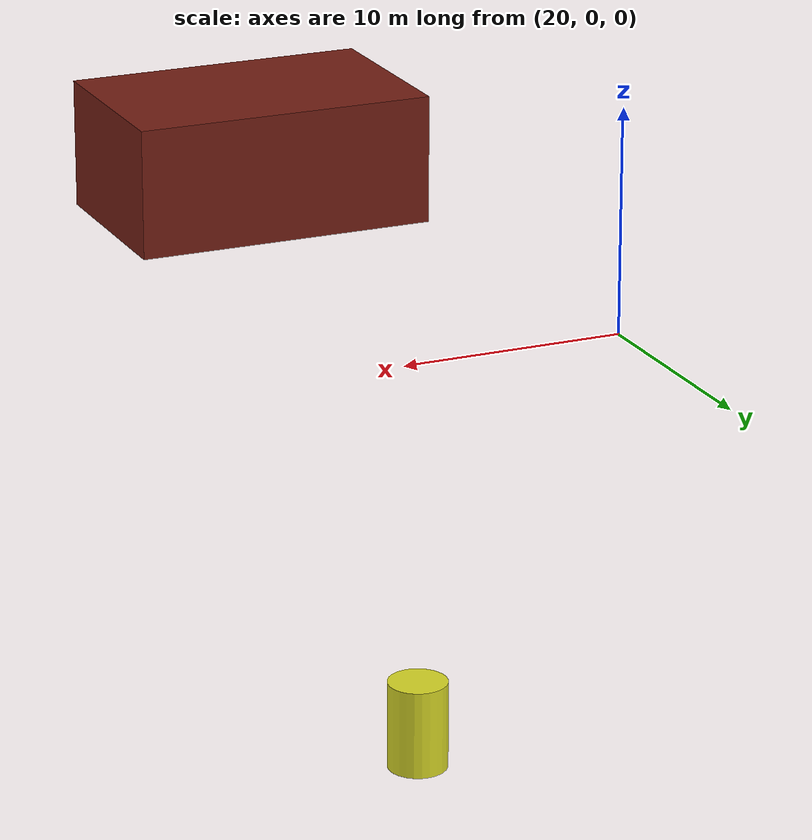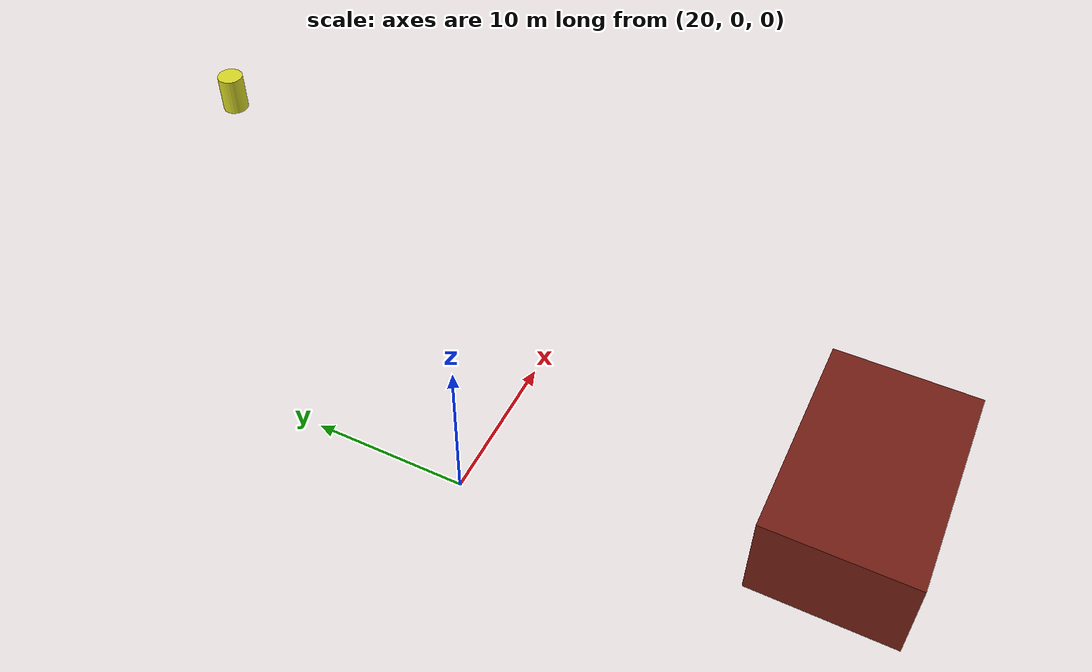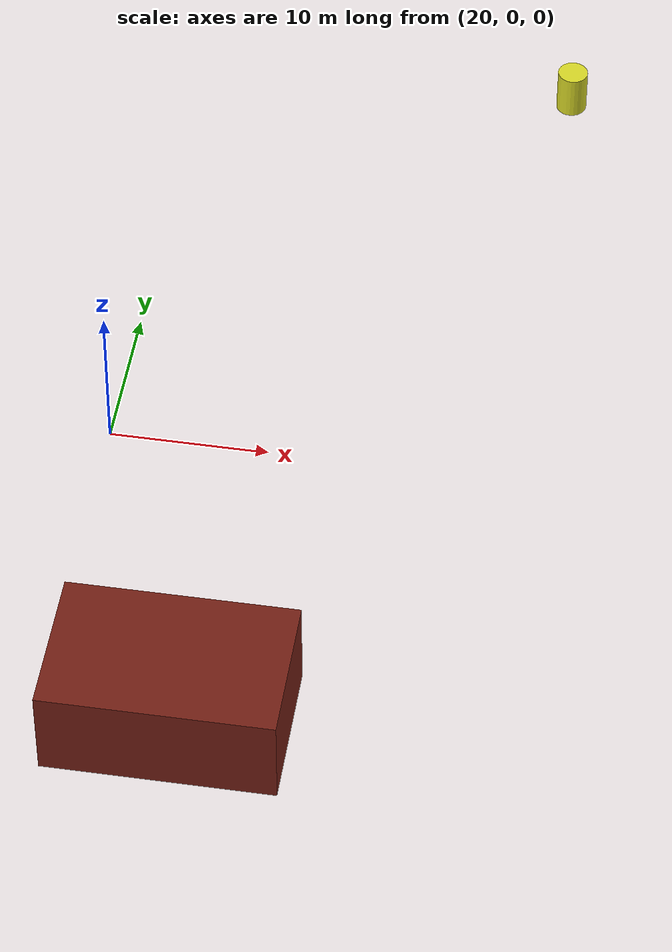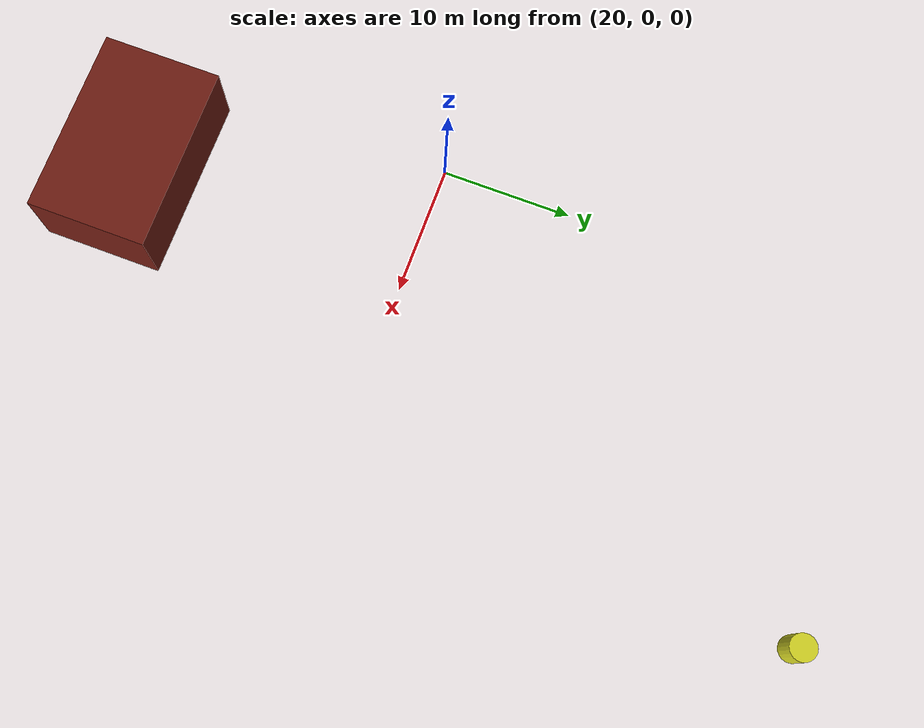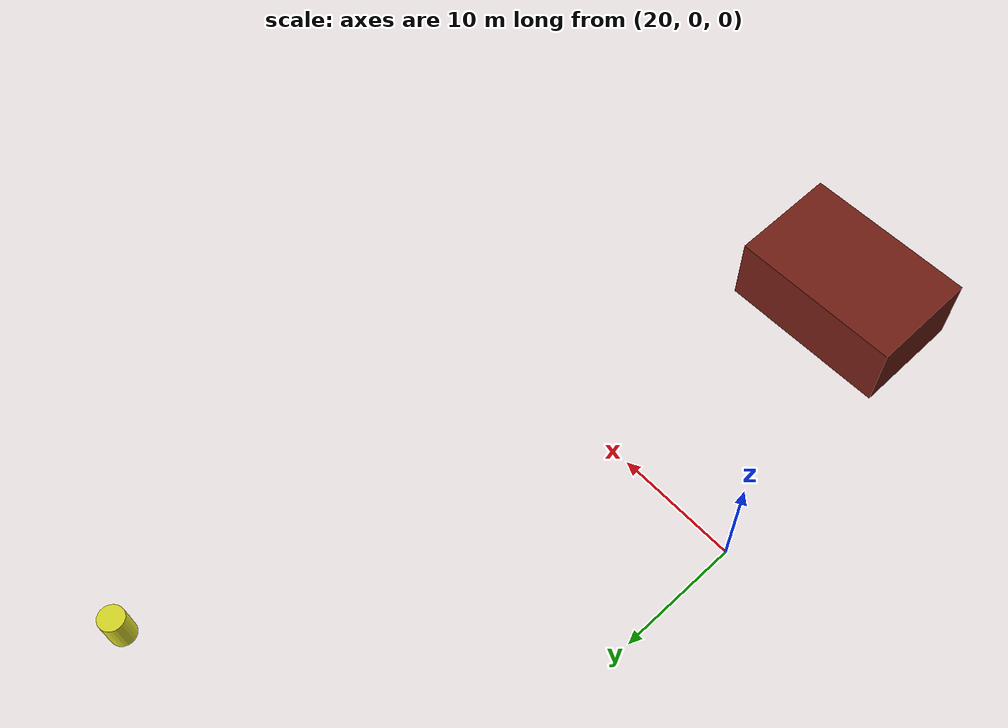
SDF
<sdf version="1.9">
 <world name="flat_rural_phototex_noon_windoff_debug">
  <model name="barn_low">
   <static>true</static>
   <pose>28 -22 3 0 0 0</pose>
   <link name="link">
    <collision name="collision"><geometry><box><size>14 9 6</size></box></geometry></collision>
    <visual name="visual">
     <geometry><box><size>14 9 6</size></box></geometry>
     <material>
      <ambient>0.450 0.120 0.080 1.000</ambient>
      <diffuse>0.450 0.120 0.080 1.000</diffuse>
      <specular>0.05 0.05 0.05 1</specular>
     </material>
    </visual>
   </link>
  </model>
  <model name="field_marker_a">
   <static>true</static>
   <pose>45 35 1.5 0 0 0</pose>
   <link name="link">
    <collision name="collision">
     <geometry><cylinder><radius>1</radius><length>3</length></cylinder></geometry>
    </collision>
    <visual name="visual">
     <geometry><cylinder><radius>1</radius><length>3</length></cylinder></geometry>
     <material>
      <ambient>0.850 0.850 0.150 1.000</ambient>
      <diffuse>0.850 0.850 0.150 1.000</diffuse>
      <specular>0.05 0.05 0.05 1</specular>
     </material>
    </visual>
   </link>
  </model>
 </world>
</sdf>
